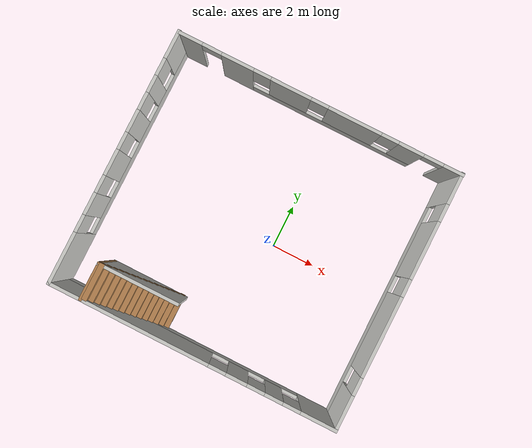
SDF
<?xml version='1.0'?>
<sdf version='1.7'>
  <model name='Robot_home'>
    <pose>-1.01985 0.28013 0 0 -0 0</pose>
    <link name='Stairs_1'>
      <visual name='Stairs_1_Visual_0'>
        <pose>-1.6447 -4.95238 0.083333 0 -0 -1.5708</pose>
        <geometry>
          <box>
            <size>1.67298 0.235361 0.166667</size>
          </box>
        </geometry>
        <material>
          <script>
            <uri>file://media/materials/scripts/gazebo.material</uri>
            <name>Gazebo/Wood</name>
          </script>
          <ambient>1 1 1 1</ambient>
        </material>
        <meta>
          <layer>0</layer>
        </meta>
      </visual>
      <collision name='Stairs_1_Collision_0'>
        <geometry>
          <box>
            <size>1.67298 0.235361 0.166667</size>
          </box>
        </geometry>
        <pose>-1.6447 -4.95238 0.083333 0 -0 -1.5708</pose>
      </collision>
      <visual name='Stairs_1_Visual_1'>
        <pose>-1.88006 -4.95238 0.25 0 -0 -1.5708</pose>
        <geometry>
          <box>
            <size>1.67298 0.235361 0.166667</size>
          </box>
        </geometry>
        <material>
          <script>
            <uri>file://media/materials/scripts/gazebo.material</uri>
            <name>Gazebo/Wood</name>
          </script>
          <ambient>1 1 1 1</ambient>
        </material>
        <meta>
          <layer>0</layer>
        </meta>
      </visual>
      <collision name='Stairs_1_Collision_1'>
        <geometry>
          <box>
            <size>1.67298 0.235361 0.166667</size>
          </box>
        </geometry>
        <pose>-1.88006 -4.95238 0.25 0 -0 -1.5708</pose>
      </collision>
      <visual name='Stairs_1_Visual_2'>
        <pose>-2.11542 -4.95238 0.416667 0 -0 -1.5708</pose>
        <geometry>
          <box>
            <size>1.67298 0.235361 0.166667</size>
          </box>
        </geometry>
        <material>
          <script>
            <uri>file://media/materials/scripts/gazebo.material</uri>
            <name>Gazebo/Wood</name>
          </script>
          <ambient>1 1 1 1</ambient>
        </material>
        <meta>
          <layer>0</layer>
        </meta>
      </visual>
      <collision name='Stairs_1_Collision_2'>
        <geometry>
          <box>
            <size>1.67298 0.235361 0.166667</size>
          </box>
        </geometry>
        <pose>-2.11542 -4.95238 0.416667 0 -0 -1.5708</pose>
      </collision>
      <visual name='Stairs_1_Visual_3'>
        <pose>-2.35078 -4.95238 0.583333 0 -0 -1.5708</pose>
        <geometry>
          <box>
            <size>1.67298 0.235361 0.166667</size>
          </box>
        </geometry>
        <material>
          <script>
            <uri>file://media/materials/scripts/gazebo.material</uri>
            <name>Gazebo/Wood</name>
          </script>
          <ambient>1 1 1 1</ambient>
        </material>
        <meta>
          <layer>0</layer>
        </meta>
      </visual>
      <collision name='Stairs_1_Collision_3'>
        <geometry>
          <box>
            <size>1.67298 0.235361 0.166667</size>
          </box>
        </geometry>
        <pose>-2.35078 -4.95238 0.583333 0 -0 -1.5708</pose>
      </collision>
      <visual name='Stairs_1_Visual_4'>
        <pose>-2.58614 -4.95238 0.75 0 -0 -1.5708</pose>
        <geometry>
          <box>
            <size>1.67298 0.235361 0.166667</size>
          </box>
        </geometry>
        <material>
          <script>
            <uri>file://media/materials/scripts/gazebo.material</uri>
            <name>Gazebo/Wood</name>
          </script>
          <ambient>1 1 1 1</ambient>
        </material>
        <meta>
          <layer>0</layer>
        </meta>
      </visual>
      <collision name='Stairs_1_Collision_4'>
        <geometry>
          <box>
            <size>1.67298 0.235361 0.166667</size>
          </box>
        </geometry>
        <pose>-2.58614 -4.95238 0.75 0 -0 -1.5708</pose>
      </collision>
      <visual name='Stairs_1_Visual_5'>
        <pose>-2.82151 -4.95238 0.916667 0 -0 -1.5708</pose>
        <geometry>
          <box>
            <size>1.67298 0.235361 0.166667</size>
          </box>
        </geometry>
        <material>
          <script>
            <uri>file://media/materials/scripts/gazebo.material</uri>
            <name>Gazebo/Wood</name>
          </script>
          <ambient>1 1 1 1</ambient>
        </material>
        <meta>
          <layer>0</layer>
        </meta>
      </visual>
      <collision name='Stairs_1_Collision_5'>
        <geometry>
          <box>
            <size>1.67298 0.235361 0.166667</size>
          </box>
        </geometry>
        <pose>-2.82151 -4.95238 0.916667 0 -0 -1.5708</pose>
      </collision>
      <visual name='Stairs_1_Visual_6'>
        <pose>-3.05687 -4.95238 1.08333 0 -0 -1.5708</pose>
        <geometry>
          <box>
            <size>1.67298 0.235361 0.166667</size>
          </box>
        </geometry>
        <material>
          <script>
            <uri>file://media/materials/scripts/gazebo.material</uri>
            <name>Gazebo/Wood</name>
          </script>
          <ambient>1 1 1 1</ambient>
        </material>
        <meta>
          <layer>0</layer>
        </meta>
      </visual>
      <collision name='Stairs_1_Collision_6'>
        <geometry>
          <box>
            <size>1.67298 0.235361 0.166667</size>
          </box>
        </geometry>
        <pose>-3.05687 -4.95238 1.08333 0 -0 -1.5708</pose>
      </collision>
      <visual name='Stairs_1_Visual_7'>
        <pose>-3.29223 -4.95238 1.25 0 -0 -1.5708</pose>
        <geometry>
          <box>
            <size>1.67298 0.235361 0.166667</size>
          </box>
        </geometry>
        <material>
          <script>
            <uri>file://media/materials/scripts/gazebo.material</uri>
            <name>Gazebo/Wood</name>
          </script>
          <ambient>1 1 1 1</ambient>
        </material>
        <meta>
          <layer>0</layer>
        </meta>
      </visual>
      <collision name='Stairs_1_Collision_7'>
        <geometry>
          <box>
            <size>1.67298 0.235361 0.166667</size>
          </box>
        </geometry>
        <pose>-3.29223 -4.95238 1.25 0 -0 -1.5708</pose>
      </collision>
      <visual name='Stairs_1_Visual_8'>
        <pose>-3.52759 -4.95238 1.41667 0 -0 -1.5708</pose>
        <geometry>
          <box>
            <size>1.67298 0.235361 0.166667</size>
          </box>
        </geometry>
        <material>
          <script>
            <uri>file://media/materials/scripts/gazebo.material</uri>
            <name>Gazebo/Wood</name>
          </script>
          <ambient>1 1 1 1</ambient>
        </material>
        <meta>
          <layer>0</layer>
        </meta>
      </visual>
      <collision name='Stairs_1_Collision_8'>
        <geometry>
          <box>
            <size>1.67298 0.235361 0.166667</size>
          </box>
        </geometry>
        <pose>-3.52759 -4.95238 1.41667 0 -0 -1.5708</pose>
      </collision>
      <visual name='Stairs_1_Visual_9'>
        <pose>-3.76295 -4.95238 1.58333 0 -0 -1.5708</pose>
        <geometry>
          <box>
            <size>1.67298 0.235361 0.166667</size>
          </box>
        </geometry>
        <material>
          <script>
            <uri>file://media/materials/scripts/gazebo.material</uri>
            <name>Gazebo/Wood</name>
          </script>
          <ambient>1 1 1 1</ambient>
        </material>
        <meta>
          <layer>0</layer>
        </meta>
      </visual>
      <collision name='Stairs_1_Collision_9'>
        <geometry>
          <box>
            <size>1.67298 0.235361 0.166667</size>
          </box>
        </geometry>
        <pose>-3.76295 -4.95238 1.58333 0 -0 -1.5708</pose>
      </collision>
      <visual name='Stairs_1_Visual_10'>
        <pose>-3.99831 -4.95238 1.75 0 -0 -1.5708</pose>
        <geometry>
          <box>
            <size>1.67298 0.235361 0.166667</size>
          </box>
        </geometry>
        <material>
          <script>
            <uri>file://media/materials/scripts/gazebo.material</uri>
            <name>Gazebo/Wood</name>
          </script>
          <ambient>1 1 1 1</ambient>
        </material>
        <meta>
          <layer>0</layer>
        </meta>
      </visual>
      <collision name='Stairs_1_Collision_10'>
        <geometry>
          <box>
            <size>1.67298 0.235361 0.166667</size>
          </box>
        </geometry>
        <pose>-3.99831 -4.95238 1.75 0 -0 -1.5708</pose>
      </collision>
      <visual name='Stairs_1_Visual_11'>
        <pose>-4.23367 -4.95238 1.91667 0 -0 -1.5708</pose>
        <geometry>
          <box>
            <size>1.67298 0.235361 0.166667</size>
          </box>
        </geometry>
        <material>
          <script>
            <uri>file://media/materials/scripts/gazebo.material</uri>
            <name>Gazebo/Wood</name>
          </script>
          <ambient>1 1 1 1</ambient>
        </material>
        <meta>
          <layer>0</layer>
        </meta>
      </visual>
      <collision name='Stairs_1_Collision_11'>
        <geometry>
          <box>
            <size>1.67298 0.235361 0.166667</size>
          </box>
        </geometry>
        <pose>-4.23367 -4.95238 1.91667 0 -0 -1.5708</pose>
      </collision>
      <visual name='Stairs_1_Visual_12'>
        <pose>-4.46903 -4.95238 2.08333 0 -0 -1.5708</pose>
        <geometry>
          <box>
            <size>1.67298 0.235361 0.166667</size>
          </box>
        </geometry>
        <material>
          <script>
            <uri>file://media/materials/scripts/gazebo.material</uri>
            <name>Gazebo/Wood</name>
          </script>
          <ambient>1 1 1 1</ambient>
        </material>
        <meta>
          <layer>0</layer>
        </meta>
      </visual>
      <collision name='Stairs_1_Collision_12'>
        <geometry>
          <box>
            <size>1.67298 0.235361 0.166667</size>
          </box>
        </geometry>
        <pose>-4.46903 -4.95238 2.08333 0 -0 -1.5708</pose>
      </collision>
      <visual name='Stairs_1_Visual_13'>
        <pose>-4.70439 -4.95238 2.25 0 -0 -1.5708</pose>
        <geometry>
          <box>
            <size>1.67298 0.235361 0.166667</size>
          </box>
        </geometry>
        <material>
          <script>
            <uri>file://media/materials/scripts/gazebo.material</uri>
            <name>Gazebo/Wood</name>
          </script>
          <ambient>1 1 1 1</ambient>
        </material>
        <meta>
          <layer>0</layer>
        </meta>
      </visual>
      <collision name='Stairs_1_Collision_13'>
        <geometry>
          <box>
            <size>1.67298 0.235361 0.166667</size>
          </box>
        </geometry>
        <pose>-4.70439 -4.95238 2.25 0 -0 -1.5708</pose>
      </collision>
      <visual name='Stairs_1_Visual_14'>
        <pose>-4.93975 -4.95238 2.41667 0 -0 -1.5708</pose>
        <geometry>
          <box>
            <size>1.67298 0.235361 0.166667</size>
          </box>
        </geometry>
        <material>
          <script>
            <uri>file://media/materials/scripts/gazebo.material</uri>
            <name>Gazebo/Wood</name>
          </script>
          <ambient>1 1 1 1</ambient>
        </material>
        <meta>
          <layer>0</layer>
        </meta>
      </visual>
      <collision name='Stairs_1_Collision_14'>
        <geometry>
          <box>
            <size>1.67298 0.235361 0.166667</size>
          </box>
        </geometry>
        <pose>-4.93975 -4.95238 2.41667 0 -0 -1.5708</pose>
      </collision>
    </link>
    <link name='Wall_0'>
      <pose>0 5.8 0 0 -0 0</pose>
      <visual name='Wall_0_Visual_0'>
        <pose>-6.04059 0 1.25 0 -0 0</pose>
        <geometry>
          <box>
            <size>1.16883 0.15 2.5</size>
          </box>
        </geometry>
        <material>
          <script>
            <uri>file://media/materials/scripts/gazebo.material</uri>
            <name>Gazebo/CeilingTiled</name>
          </script>
          <ambient>1 0.764706 0.305882 1</ambient>
        </material>
        <meta>
          <layer>0</layer>
        </meta>
      </visual>
      <collision name='Wall_0_Collision_0'>
        <geometry>
          <box>
            <size>1.16883 0.15 2.5</size>
          </box>
        </geometry>
        <pose>-6.04059 0 1.25 0 -0 0</pose>
      </collision>
      <visual name='Wall_0_Visual_1'>
        <pose>-3.8106 0 1.25 0 -0 0</pose>
        <geometry>
          <box>
            <size>1.49113 0.15 2.5</size>
          </box>
        </geometry>
        <material>
          <script>
            <uri>file://media/materials/scripts/gazebo.material</uri>
            <name>Gazebo/CeilingTiled</name>
          </script>
          <ambient>1 0.764706 0.305882 1</ambient>
        </material>
        <meta>
          <layer>0</layer>
        </meta>
      </visual>
      <collision name='Wall_0_Collision_1'>
        <geometry>
          <box>
            <size>1.49113 0.15 2.5</size>
          </box>
        </geometry>
        <pose>-3.8106 0 1.25 0 -0 0</pose>
      </collision>
      <visual name='Wall_0_Visual_2'>
        <pose>6.15112 0 1.25 0 -0 0</pose>
        <geometry>
          <box>
            <size>0.947762 0.15 2.5</size>
          </box>
        </geometry>
        <material>
          <script>
            <uri>file://media/materials/scripts/gazebo.material</uri>
            <name>Gazebo/CeilingTiled</name>
          </script>
          <ambient>1 0.764706 0.305882 1</ambient>
        </material>
        <meta>
          <layer>0</layer>
        </meta>
      </visual>
      <collision name='Wall_0_Collision_2'>
        <geometry>
          <box>
            <size>0.947762 0.15 2.5</size>
          </box>
        </geometry>
        <pose>6.15112 0 1.25 0 -0 0</pose>
      </collision>
      <visual name='Wall_0_Visual_3'>
        <pose>0.856098 0 0.25 0 -0 0</pose>
        <geometry>
          <box>
            <size>7.84228 0.15 0.5</size>
          </box>
        </geometry>
        <material>
          <script>
            <uri>file://media/materials/scripts/gazebo.material</uri>
            <name>Gazebo/CeilingTiled</name>
          </script>
          <ambient>1 0.764706 0.305882 1</ambient>
        </material>
        <meta>
          <layer>0</layer>
        </meta>
      </visual>
      <collision name='Wall_0_Collision_3'>
        <geometry>
          <box>
            <size>7.84228 0.15 0.5</size>
          </box>
        </geometry>
        <pose>0.856098 0 0.25 0 -0 0</pose>
      </collision>
      <visual name='Wall_0_Visual_4'>
        <pose>-1.33437 0 1.5 0 -0 0</pose>
        <geometry>
          <box>
            <size>1.86135 0.15 2</size>
          </box>
        </geometry>
        <material>
          <script>
            <uri>file://media/materials/scripts/gazebo.material</uri>
            <name>Gazebo/CeilingTiled</name>
          </script>
          <ambient>1 0.764706 0.305882 1</ambient>
        </material>
        <meta>
          <layer>0</layer>
        </meta>
      </visual>
      <collision name='Wall_0_Collision_4'>
        <geometry>
          <box>
            <size>1.86135 0.15 2</size>
          </box>
        </geometry>
        <pose>-1.33437 0 1.5 0 -0 0</pose>
      </collision>
      <visual name='Wall_0_Visual_5'>
        <pose>1.61759 0 1.5 0 -0 0</pose>
        <geometry>
          <box>
            <size>2.44256 0.15 2</size>
          </box>
        </geometry>
        <material>
          <script>
            <uri>file://media/materials/scripts/gazebo.material</uri>
            <name>Gazebo/CeilingTiled</name>
          </script>
          <ambient>1 0.764706 0.305882 1</ambient>
        </material>
        <meta>
          <layer>0</layer>
        </meta>
      </visual>
      <collision name='Wall_0_Collision_5'>
        <geometry>
          <box>
            <size>2.44256 0.15 2</size>
          </box>
        </geometry>
        <pose>1.61759 0 1.5 0 -0 0</pose>
      </collision>
      <visual name='Wall_0_Visual_6'>
        <pose>4.20806 0 1.5 0 -0 0</pose>
        <geometry>
          <box>
            <size>1.13837 0.15 2</size>
          </box>
        </geometry>
        <material>
          <script>
            <uri>file://media/materials/scripts/gazebo.material</uri>
            <name>Gazebo/CeilingTiled</name>
          </script>
          <ambient>1 0.764706 0.305882 1</ambient>
        </material>
        <meta>
          <layer>0</layer>
        </meta>
      </visual>
      <collision name='Wall_0_Collision_6'>
        <geometry>
          <box>
            <size>1.13837 0.15 2</size>
          </box>
        </geometry>
        <pose>4.20806 0 1.5 0 -0 0</pose>
      </collision>
      <visual name='Wall_0_Visual_7'>
        <pose>-2.66504 0 1.9 0 -0 0</pose>
        <geometry>
          <box>
            <size>0.8 0.15 1.2</size>
          </box>
        </geometry>
        <material>
          <script>
            <uri>file://media/materials/scripts/gazebo.material</uri>
            <name>Gazebo/CeilingTiled</name>
          </script>
          <ambient>1 0.764706 0.305882 1</ambient>
        </material>
        <meta>
          <layer>0</layer>
        </meta>
      </visual>
      <collision name='Wall_0_Collision_7'>
        <geometry>
          <box>
            <size>0.8 0.15 1.2</size>
          </box>
        </geometry>
        <pose>-2.66504 0 1.9 0 -0 0</pose>
      </collision>
      <visual name='Wall_0_Visual_8'>
        <pose>-0.003691 0 1.9 0 -0 0</pose>
        <geometry>
          <box>
            <size>0.8 0.15 1.2</size>
          </box>
        </geometry>
        <material>
          <script>
            <uri>file://media/materials/scripts/gazebo.material</uri>
            <name>Gazebo/CeilingTiled</name>
          </script>
          <ambient>1 0.764706 0.305882 1</ambient>
        </material>
        <meta>
          <layer>0</layer>
        </meta>
      </visual>
      <collision name='Wall_0_Collision_8'>
        <geometry>
          <box>
            <size>0.8 0.15 1.2</size>
          </box>
        </geometry>
        <pose>-0.003691 0 1.9 0 -0 0</pose>
      </collision>
      <visual name='Wall_0_Visual_9'>
        <pose>3.23887 0 1.9 0 -0 0</pose>
        <geometry>
          <box>
            <size>0.8 0.15 1.2</size>
          </box>
        </geometry>
        <material>
          <script>
            <uri>file://media/materials/scripts/gazebo.material</uri>
            <name>Gazebo/CeilingTiled</name>
          </script>
          <ambient>1 0.764706 0.305882 1</ambient>
        </material>
        <meta>
          <layer>0</layer>
        </meta>
      </visual>
      <collision name='Wall_0_Collision_9'>
        <geometry>
          <box>
            <size>0.8 0.15 1.2</size>
          </box>
        </geometry>
        <pose>3.23887 0 1.9 0 -0 0</pose>
      </collision>
      <visual name='Wall_0_Visual_10'>
        <pose>-5.00617 0 2.25 0 -0 0</pose>
        <geometry>
          <box>
            <size>0.9 0.15 0.5</size>
          </box>
        </geometry>
        <material>
          <script>
            <uri>file://media/materials/scripts/gazebo.material</uri>
            <name>Gazebo/CeilingTiled</name>
          </script>
          <ambient>1 0.764706 0.305882 1</ambient>
        </material>
        <meta>
          <layer>0</layer>
        </meta>
      </visual>
      <collision name='Wall_0_Collision_10'>
        <geometry>
          <box>
            <size>0.9 0.15 0.5</size>
          </box>
        </geometry>
        <pose>-5.00617 0 2.25 0 -0 0</pose>
      </collision>
      <visual name='Wall_0_Visual_11'>
        <pose>5.22724 0 2.25 0 -0 0</pose>
        <geometry>
          <box>
            <size>0.9 0.15 0.5</size>
          </box>
        </geometry>
        <material>
          <script>
            <uri>file://media/materials/scripts/gazebo.material</uri>
            <name>Gazebo/CeilingTiled</name>
          </script>
          <ambient>1 0.764706 0.305882 1</ambient>
        </material>
        <meta>
          <layer>0</layer>
        </meta>
      </visual>
      <collision name='Wall_0_Collision_11'>
        <geometry>
          <box>
            <size>0.9 0.15 0.5</size>
          </box>
        </geometry>
        <pose>5.22724 0 2.25 0 -0 0</pose>
      </collision>
    </link>
    <link name='Wall_1'>
      <pose>6.55 -0 0 0 -0 -1.56819</pose>
      <visual name='Wall_1_Visual_0'>
        <pose>-5.17617 0 1.25 0 -0 0</pose>
        <geometry>
          <box>
            <size>1.45854 0.15 2.5</size>
          </box>
        </geometry>
        <material>
          <script>
            <uri>file://media/materials/scripts/gazebo.material</uri>
            <name>Gazebo/CeilingTiled</name>
          </script>
          <ambient>1 0.764706 0.305882 1</ambient>
        </material>
        <meta>
          <layer>0</layer>
        </meta>
      </visual>
      <collision name='Wall_1_Collision_0'>
        <geometry>
          <box>
            <size>1.45854 0.15 2.5</size>
          </box>
        </geometry>
        <pose>-5.17617 0 1.25 0 -0 0</pose>
      </collision>
      <visual name='Wall_1_Visual_1'>
        <pose>0.729272 0 0.25 0 -0 0</pose>
        <geometry>
          <box>
            <size>10.3523 0.15 0.5</size>
          </box>
        </geometry>
        <material>
          <script>
            <uri>file://media/materials/scripts/gazebo.material</uri>
            <name>Gazebo/CeilingTiled</name>
          </script>
          <ambient>1 0.764706 0.305882 1</ambient>
        </material>
        <meta>
          <layer>0</layer>
        </meta>
      </visual>
      <collision name='Wall_1_Collision_1'>
        <geometry>
          <box>
            <size>10.3523 0.15 0.5</size>
          </box>
        </geometry>
        <pose>0.729272 0 0.25 0 -0 0</pose>
      </collision>
      <visual name='Wall_1_Visual_2'>
        <pose>-2.32485 0 1.5 0 -0 0</pose>
        <geometry>
          <box>
            <size>2.64409 0.15 2</size>
          </box>
        </geometry>
        <material>
          <script>
            <uri>file://media/materials/scripts/gazebo.material</uri>
            <name>Gazebo/CeilingTiled</name>
          </script>
          <ambient>1 0.764706 0.305882 1</ambient>
        </material>
        <meta>
          <layer>0</layer>
        </meta>
      </visual>
      <collision name='Wall_1_Collision_2'>
        <geometry>
          <box>
            <size>2.64409 0.15 2</size>
          </box>
        </geometry>
        <pose>-2.32485 0 1.5 0 -0 0</pose>
      </collision>
      <visual name='Wall_1_Visual_3'>
        <pose>1.62662 0 1.5 0 -0 0</pose>
        <geometry>
          <box>
            <size>3.65886 0.15 2</size>
          </box>
        </geometry>
        <material>
          <script>
            <uri>file://media/materials/scripts/gazebo.material</uri>
            <name>Gazebo/CeilingTiled</name>
          </script>
          <ambient>1 0.764706 0.305882 1</ambient>
        </material>
        <meta>
          <layer>0</layer>
        </meta>
      </visual>
      <collision name='Wall_1_Collision_3'>
        <geometry>
          <box>
            <size>3.65886 0.15 2</size>
          </box>
        </geometry>
        <pose>1.62662 0 1.5 0 -0 0</pose>
      </collision>
      <visual name='Wall_1_Visual_4'>
        <pose>5.08075 0 1.5 0 -0 0</pose>
        <geometry>
          <box>
            <size>1.64939 0.15 2</size>
          </box>
        </geometry>
        <material>
          <script>
            <uri>file://media/materials/scripts/gazebo.material</uri>
            <name>Gazebo/CeilingTiled</name>
          </script>
          <ambient>1 0.764706 0.305882 1</ambient>
        </material>
        <meta>
          <layer>0</layer>
        </meta>
      </visual>
      <collision name='Wall_1_Collision_4'>
        <geometry>
          <box>
            <size>1.64939 0.15 2</size>
          </box>
        </geometry>
        <pose>5.08075 0 1.5 0 -0 0</pose>
      </collision>
      <visual name='Wall_1_Visual_5'>
        <pose>-4.04689 0 1.9 0 -0 0</pose>
        <geometry>
          <box>
            <size>0.8 0.15 1.2</size>
          </box>
        </geometry>
        <material>
          <script>
            <uri>file://media/materials/scripts/gazebo.material</uri>
            <name>Gazebo/CeilingTiled</name>
          </script>
          <ambient>1 0.764706 0.305882 1</ambient>
        </material>
        <meta>
          <layer>0</layer>
        </meta>
      </visual>
      <collision name='Wall_1_Collision_5'>
        <geometry>
          <box>
            <size>0.8 0.15 1.2</size>
          </box>
        </geometry>
        <pose>-4.04689 0 1.9 0 -0 0</pose>
      </collision>
      <visual name='Wall_1_Visual_6'>
        <pose>-0.602808 0 1.9 0 -0 0</pose>
        <geometry>
          <box>
            <size>0.8 0.15 1.2</size>
          </box>
        </geometry>
        <material>
          <script>
            <uri>file://media/materials/scripts/gazebo.material</uri>
            <name>Gazebo/CeilingTiled</name>
          </script>
          <ambient>1 0.764706 0.305882 1</ambient>
        </material>
        <meta>
          <layer>0</layer>
        </meta>
      </visual>
      <collision name='Wall_1_Collision_6'>
        <geometry>
          <box>
            <size>0.8 0.15 1.2</size>
          </box>
        </geometry>
        <pose>-0.602808 0 1.9 0 -0 0</pose>
      </collision>
      <visual name='Wall_1_Visual_7'>
        <pose>3.85605 0 1.9 0 -0 0</pose>
        <geometry>
          <box>
            <size>0.8 0.15 1.2</size>
          </box>
        </geometry>
        <material>
          <script>
            <uri>file://media/materials/scripts/gazebo.material</uri>
            <name>Gazebo/CeilingTiled</name>
          </script>
          <ambient>1 0.764706 0.305882 1</ambient>
        </material>
        <meta>
          <layer>0</layer>
        </meta>
      </visual>
      <collision name='Wall_1_Collision_7'>
        <geometry>
          <box>
            <size>0.8 0.15 1.2</size>
          </box>
        </geometry>
        <pose>3.85605 0 1.9 0 -0 0</pose>
      </collision>
    </link>
    <link name='Wall_17'>
      <collision name='Wall_17_Collision'>
        <geometry>
          <box>
            <size>1.75 0.15 2.5</size>
          </box>
        </geometry>
        <pose>0 0 1.25 0 -0 0</pose>
      </collision>
      <visual name='Wall_17_Visual'>
        <pose>0 0 1.25 0 -0 0</pose>
        <geometry>
          <box>
            <size>1.75 0.15 2.5</size>
          </box>
        </geometry>
        <material>
          <script>
            <uri>file://media/materials/scripts/gazebo.material</uri>
            <name>Gazebo/Wood</name>
          </script>
          <ambient>1 1 1 1</ambient>
        </material>
        <meta>
          <layer>0</layer>
        </meta>
      </visual>
      <pose>-5.0761 -5.00724 0 0 -0 1.5708</pose>
    </link>
    <link name='Wall_18'>
      <collision name='Wall_18_Collision'>
        <geometry>
          <box>
            <size>3.75 0.15 2.5</size>
          </box>
        </geometry>
        <pose>0 0 1.25 0 -0 0</pose>
      </collision>
      <visual name='Wall_18_Visual'>
        <pose>0 0 1.25 0 -0 0</pose>
        <geometry>
          <box>
            <size>3.75 0.15 2.5</size>
          </box>
        </geometry>
        <material>
          <script>
            <uri>file://media/materials/scripts/gazebo.material</uri>
            <name>Gazebo/CeilingTiled</name>
          </script>
          <ambient>1 0.764706 0.305882 1</ambient>
        </material>
        <meta>
          <layer>0</layer>
        </meta>
      </visual>
      <pose>-3.2761 -4.20724 0 0 -0 0</pose>
    </link>
    <link name='Wall_2'>
      <pose>0.015209 -5.83042 0 0 -0 3.14159</pose>
      <visual name='Wall_2_Visual_0'>
        <pose>-5.78963 0 1.25 0 -0 0</pose>
        <geometry>
          <box>
            <size>1.67075 0.15 2.5</size>
          </box>
        </geometry>
        <material>
          <script>
            <uri>file://media/materials/scripts/gazebo.material</uri>
            <name>Gazebo/CeilingTiled</name>
          </script>
          <ambient>1 0.764706 0.305882 1</ambient>
        </material>
        <meta>
          <layer>0</layer>
        </meta>
      </visual>
      <collision name='Wall_2_Collision_0'>
        <geometry>
          <box>
            <size>1.67075 0.15 2.5</size>
          </box>
        </geometry>
        <pose>-5.78963 0 1.25 0 -0 0</pose>
      </collision>
      <visual name='Wall_2_Visual_1'>
        <pose>0.835373 0 0.25 0 -0 0</pose>
        <geometry>
          <box>
            <size>11.5793 0.15 0.5</size>
          </box>
        </geometry>
        <material>
          <script>
            <uri>file://media/materials/scripts/gazebo.material</uri>
            <name>Gazebo/CeilingTiled</name>
          </script>
          <ambient>1 0.764706 0.305882 1</ambient>
        </material>
        <meta>
          <layer>0</layer>
        </meta>
      </visual>
      <collision name='Wall_2_Collision_1'>
        <geometry>
          <box>
            <size>11.5793 0.15 0.5</size>
          </box>
        </geometry>
        <pose>0.835373 0 0.25 0 -0 0</pose>
      </collision>
      <visual name='Wall_2_Visual_2'>
        <pose>-3.73879 0 1.5 0 -0 0</pose>
        <geometry>
          <box>
            <size>0.830921 0.15 2</size>
          </box>
        </geometry>
        <material>
          <script>
            <uri>file://media/materials/scripts/gazebo.material</uri>
            <name>Gazebo/CeilingTiled</name>
          </script>
          <ambient>1 0.764706 0.305882 1</ambient>
        </material>
        <meta>
          <layer>0</layer>
        </meta>
      </visual>
      <collision name='Wall_2_Collision_2'>
        <geometry>
          <box>
            <size>0.830921 0.15 2</size>
          </box>
        </geometry>
        <pose>-3.73879 0 1.5 0 -0 0</pose>
      </collision>
      <visual name='Wall_2_Visual_3'>
        <pose>-2.04103 0 1.5 0 -0 0</pose>
        <geometry>
          <box>
            <size>0.964594 0.15 2</size>
          </box>
        </geometry>
        <material>
          <script>
            <uri>file://media/materials/scripts/gazebo.material</uri>
            <name>Gazebo/CeilingTiled</name>
          </script>
          <ambient>1 0.764706 0.305882 1</ambient>
        </material>
        <meta>
          <layer>0</layer>
        </meta>
      </visual>
      <collision name='Wall_2_Collision_3'>
        <geometry>
          <box>
            <size>0.964594 0.15 2</size>
          </box>
        </geometry>
        <pose>-2.04103 0 1.5 0 -0 0</pose>
      </collision>
      <visual name='Wall_2_Visual_4'>
        <pose>2.93313 0 1.5 0 -0 0</pose>
        <geometry>
          <box>
            <size>7.38374 0.15 2</size>
          </box>
        </geometry>
        <material>
          <script>
            <uri>file://media/materials/scripts/gazebo.material</uri>
            <name>Gazebo/CeilingTiled</name>
          </script>
          <ambient>1 0.764706 0.305882 1</ambient>
        </material>
        <meta>
          <layer>0</layer>
        </meta>
      </visual>
      <collision name='Wall_2_Collision_4'>
        <geometry>
          <box>
            <size>7.38374 0.15 2</size>
          </box>
        </geometry>
        <pose>2.93313 0 1.5 0 -0 0</pose>
      </collision>
      <visual name='Wall_2_Visual_5'>
        <pose>-4.55425 0 1.9 0 -0 0</pose>
        <geometry>
          <box>
            <size>0.8 0.15 1.2</size>
          </box>
        </geometry>
        <material>
          <script>
            <uri>file://media/materials/scripts/gazebo.material</uri>
            <name>Gazebo/CeilingTiled</name>
          </script>
          <ambient>1 0.764706 0.305882 1</ambient>
        </material>
        <meta>
          <layer>0</layer>
        </meta>
      </visual>
      <collision name='Wall_2_Collision_5'>
        <geometry>
          <box>
            <size>0.8 0.15 1.2</size>
          </box>
        </geometry>
        <pose>-4.55425 0 1.9 0 -0 0</pose>
      </collision>
      <visual name='Wall_2_Visual_6'>
        <pose>-2.92333 0 1.9 0 -0 0</pose>
        <geometry>
          <box>
            <size>0.8 0.15 1.2</size>
          </box>
        </geometry>
        <material>
          <script>
            <uri>file://media/materials/scripts/gazebo.material</uri>
            <name>Gazebo/CeilingTiled</name>
          </script>
          <ambient>1 0.764706 0.305882 1</ambient>
        </material>
        <meta>
          <layer>0</layer>
        </meta>
      </visual>
      <collision name='Wall_2_Collision_6'>
        <geometry>
          <box>
            <size>0.8 0.15 1.2</size>
          </box>
        </geometry>
        <pose>-2.92333 0 1.9 0 -0 0</pose>
      </collision>
      <visual name='Wall_2_Visual_7'>
        <pose>-1.15874 0 1.9 0 -0 0</pose>
        <geometry>
          <box>
            <size>0.8 0.15 1.2</size>
          </box>
        </geometry>
        <material>
          <script>
            <uri>file://media/materials/scripts/gazebo.material</uri>
            <name>Gazebo/CeilingTiled</name>
          </script>
          <ambient>1 0.764706 0.305882 1</ambient>
        </material>
        <meta>
          <layer>0</layer>
        </meta>
      </visual>
      <collision name='Wall_2_Collision_7'>
        <geometry>
          <box>
            <size>0.8 0.15 1.2</size>
          </box>
        </geometry>
        <pose>-1.15874 0 1.9 0 -0 0</pose>
      </collision>
    </link>
    <link name='Wall_3'>
      <pose>-6.55 -0 0 0 -0 1.5734</pose>
      <visual name='Wall_3_Visual_0'>
        <pose>-4.69636 0 1.25 0 -0 0</pose>
        <geometry>
          <box>
            <size>2.41815 0.15 2.5</size>
          </box>
        </geometry>
        <material>
          <script>
            <uri>file://media/materials/scripts/gazebo.material</uri>
            <name>Gazebo/CeilingTiled</name>
          </script>
          <ambient>1 0.764706 0.305882 1</ambient>
        </material>
        <meta>
          <layer>0</layer>
        </meta>
      </visual>
      <collision name='Wall_3_Collision_0'>
        <geometry>
          <box>
            <size>2.41815 0.15 2.5</size>
          </box>
        </geometry>
        <pose>-4.69636 0 1.25 0 -0 0</pose>
      </collision>
      <visual name='Wall_3_Visual_1'>
        <pose>1.20908 0 0.25 0 -0 0</pose>
        <geometry>
          <box>
            <size>9.39272 0.15 0.5</size>
          </box>
        </geometry>
        <material>
          <script>
            <uri>file://media/materials/scripts/gazebo.material</uri>
            <name>Gazebo/CeilingTiled</name>
          </script>
          <ambient>1 0.764706 0.305882 1</ambient>
        </material>
        <meta>
          <layer>0</layer>
        </meta>
      </visual>
      <collision name='Wall_3_Collision_1'>
        <geometry>
          <box>
            <size>9.39272 0.15 0.5</size>
          </box>
        </geometry>
        <pose>1.20908 0 0.25 0 -0 0</pose>
      </collision>
      <visual name='Wall_3_Visual_2'>
        <pose>-2.18014 0 1.5 0 -0 0</pose>
        <geometry>
          <box>
            <size>1.01429 0.15 2</size>
          </box>
        </geometry>
        <material>
          <script>
            <uri>file://media/materials/scripts/gazebo.material</uri>
            <name>Gazebo/CeilingTiled</name>
          </script>
          <ambient>1 0.764706 0.305882 1</ambient>
        </material>
        <meta>
          <layer>0</layer>
        </meta>
      </visual>
      <collision name='Wall_3_Collision_2'>
        <geometry>
          <box>
            <size>1.01429 0.15 2</size>
          </box>
        </geometry>
        <pose>-2.18014 0 1.5 0 -0 0</pose>
      </collision>
      <visual name='Wall_3_Visual_3'>
        <pose>-0.273589 0 1.5 0 -0 0</pose>
        <geometry>
          <box>
            <size>1.1988 0.15 2</size>
          </box>
        </geometry>
        <material>
          <script>
            <uri>file://media/materials/scripts/gazebo.material</uri>
            <name>Gazebo/CeilingTiled</name>
          </script>
          <ambient>1 0.764706 0.305882 1</ambient>
        </material>
        <meta>
          <layer>0</layer>
        </meta>
      </visual>
      <collision name='Wall_3_Collision_3'>
        <geometry>
          <box>
            <size>1.1988 0.15 2</size>
          </box>
        </geometry>
        <pose>-0.273589 0 1.5 0 -0 0</pose>
      </collision>
      <visual name='Wall_3_Visual_4'>
        <pose>1.64833 0 1.5 0 -0 0</pose>
        <geometry>
          <box>
            <size>1.04505 0.15 2</size>
          </box>
        </geometry>
        <material>
          <script>
            <uri>file://media/materials/scripts/gazebo.material</uri>
            <name>Gazebo/CeilingTiled</name>
          </script>
          <ambient>1 0.764706 0.305882 1</ambient>
        </material>
        <meta>
          <layer>0</layer>
        </meta>
      </visual>
      <collision name='Wall_3_Collision_4'>
        <geometry>
          <box>
            <size>1.04505 0.15 2</size>
          </box>
        </geometry>
        <pose>1.64833 0 1.5 0 -0 0</pose>
      </collision>
      <visual name='Wall_3_Visual_5'>
        <pose>3.37038 0 1.5 0 -0 0</pose>
        <geometry>
          <box>
            <size>0.79904 0.15 2</size>
          </box>
        </geometry>
        <material>
          <script>
            <uri>file://media/materials/scripts/gazebo.material</uri>
            <name>Gazebo/CeilingTiled</name>
          </script>
          <ambient>1 0.764706 0.305882 1</ambient>
        </material>
        <meta>
          <layer>0</layer>
        </meta>
      </visual>
      <collision name='Wall_3_Collision_5'>
        <geometry>
          <box>
            <size>0.79904 0.15 2</size>
          </box>
        </geometry>
        <pose>3.37038 0 1.5 0 -0 0</pose>
      </collision>
      <visual name='Wall_3_Visual_6'>
        <pose>5.23767 0 1.5 0 -0 0</pose>
        <geometry>
          <box>
            <size>1.33554 0.15 2</size>
          </box>
        </geometry>
        <material>
          <script>
            <uri>file://media/materials/scripts/gazebo.material</uri>
            <name>Gazebo/CeilingTiled</name>
          </script>
          <ambient>1 0.764706 0.305882 1</ambient>
        </material>
        <meta>
          <layer>0</layer>
        </meta>
      </visual>
      <collision name='Wall_3_Collision_6'>
        <geometry>
          <box>
            <size>1.33554 0.15 2</size>
          </box>
        </geometry>
        <pose>5.23767 0 1.5 0 -0 0</pose>
      </collision>
      <visual name='Wall_3_Visual_7'>
        <pose>-3.08728 0 1.9 0 -0 0</pose>
        <geometry>
          <box>
            <size>0.8 0.15 1.2</size>
          </box>
        </geometry>
        <material>
          <script>
            <uri>file://media/materials/scripts/gazebo.material</uri>
            <name>Gazebo/CeilingTiled</name>
          </script>
          <ambient>1 0.764706 0.305882 1</ambient>
        </material>
        <meta>
          <layer>0</layer>
        </meta>
      </visual>
      <collision name='Wall_3_Collision_7'>
        <geometry>
          <box>
            <size>0.8 0.15 1.2</size>
          </box>
        </geometry>
        <pose>-3.08728 0 1.9 0 -0 0</pose>
      </collision>
      <visual name='Wall_3_Visual_8'>
        <pose>-1.27299 0 1.9 0 -0 0</pose>
        <geometry>
          <box>
            <size>0.8 0.15 1.2</size>
          </box>
        </geometry>
        <material>
          <script>
            <uri>file://media/materials/scripts/gazebo.material</uri>
            <name>Gazebo/CeilingTiled</name>
          </script>
          <ambient>1 0.764706 0.305882 1</ambient>
        </material>
        <meta>
          <layer>0</layer>
        </meta>
      </visual>
      <collision name='Wall_3_Collision_8'>
        <geometry>
          <box>
            <size>0.8 0.15 1.2</size>
          </box>
        </geometry>
        <pose>-1.27299 0 1.9 0 -0 0</pose>
      </collision>
      <visual name='Wall_3_Visual_9'>
        <pose>0.725811 0 1.9 0 -0 0</pose>
        <geometry>
          <box>
            <size>0.8 0.15 1.2</size>
          </box>
        </geometry>
        <material>
          <script>
            <uri>file://media/materials/scripts/gazebo.material</uri>
            <name>Gazebo/CeilingTiled</name>
          </script>
          <ambient>1 0.764706 0.305882 1</ambient>
        </material>
        <meta>
          <layer>0</layer>
        </meta>
      </visual>
      <collision name='Wall_3_Collision_9'>
        <geometry>
          <box>
            <size>0.8 0.15 1.2</size>
          </box>
        </geometry>
        <pose>0.725811 0 1.9 0 -0 0</pose>
      </collision>
      <visual name='Wall_3_Visual_10'>
        <pose>2.57086 0 1.9 0 -0 0</pose>
        <geometry>
          <box>
            <size>0.8 0.15 1.2</size>
          </box>
        </geometry>
        <material>
          <script>
            <uri>file://media/materials/scripts/gazebo.material</uri>
            <name>Gazebo/CeilingTiled</name>
          </script>
          <ambient>1 0.764706 0.305882 1</ambient>
        </material>
        <meta>
          <layer>0</layer>
        </meta>
      </visual>
      <collision name='Wall_3_Collision_10'>
        <geometry>
          <box>
            <size>0.8 0.15 1.2</size>
          </box>
        </geometry>
        <pose>2.57086 0 1.9 0 -0 0</pose>
      </collision>
      <visual name='Wall_3_Visual_11'>
        <pose>4.1699 0 1.9 0 -0 0</pose>
        <geometry>
          <box>
            <size>0.8 0.15 1.2</size>
          </box>
        </geometry>
        <material>
          <script>
            <uri>file://media/materials/scripts/gazebo.material</uri>
            <name>Gazebo/CeilingTiled</name>
          </script>
          <ambient>1 0.764706 0.305882 1</ambient>
        </material>
        <meta>
          <layer>0</layer>
        </meta>
      </visual>
      <collision name='Wall_3_Collision_11'>
        <geometry>
          <box>
            <size>0.8 0.15 1.2</size>
          </box>
        </geometry>
        <pose>4.1699 0 1.9 0 -0 0</pose>
      </collision>
    </link>
    <static>1</static>
  </model>
</sdf>
